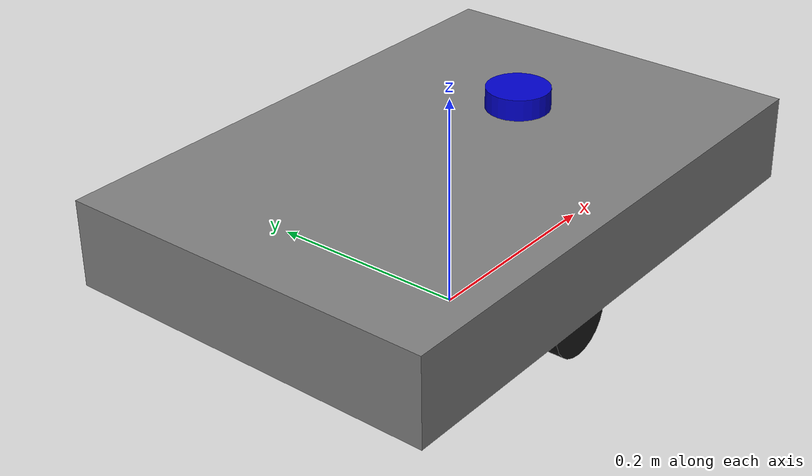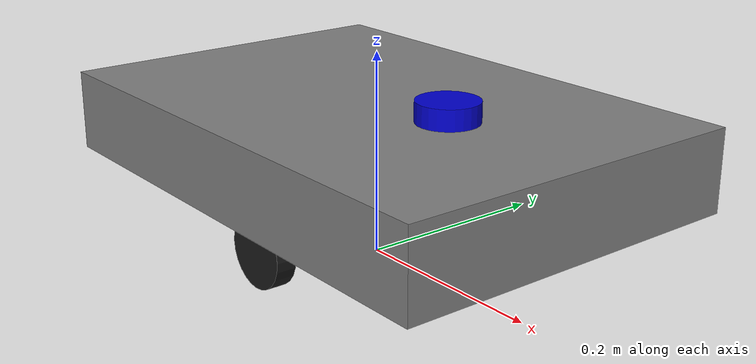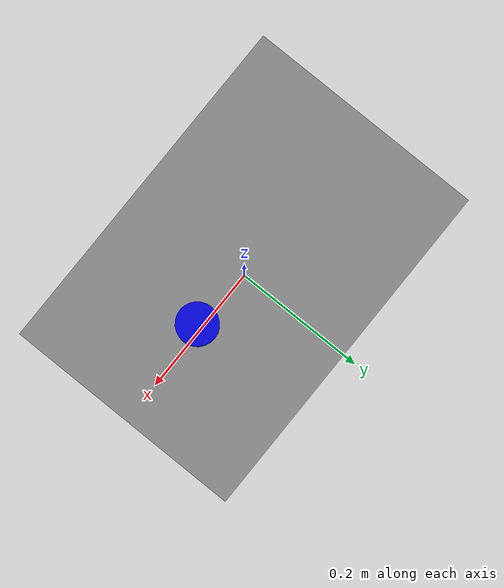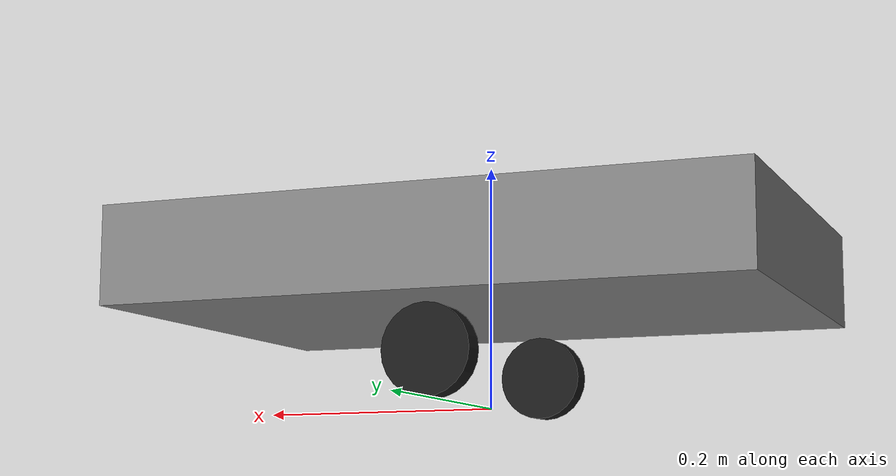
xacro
<?xml version="1.0"?>
<robot xmlns:xacro="http://www.ros.org/wiki/xacro" name="slamwalker">

  <!-- ============ Parameters ============ -->
  <xacro:arg name="wheel_base"    default="0.26"/>
  <xacro:arg name="wheel_radius"  default="0.03575"/>
  <xacro:arg name="body_length"   default="0.52"/>
  <xacro:arg name="body_width"    default="0.356"/>
  <xacro:arg name="body_height"   default="0.08"/>
  <!-- Lidar mount: XYZ offset from base_link center -->
  <xacro:arg name="lidar_x"       default="0.1"/>
  <xacro:arg name="lidar_y"       default="0.0"/>
  <xacro:arg name="lidar_z"       default="0.12"/>

  <!-- ============ base_footprint (ground projection) ============ -->
  <link name="base_footprint"/>

  <joint name="base_footprint_joint" type="fixed">
    <parent link="base_footprint"/>
    <child link="base_link"/>
    <origin xyz="0 0 $(arg wheel_radius)" rpy="0 0 0"/>
  </joint>

  <!-- ============ base_link (chassis center) ============ -->
  <link name="base_link">
    <visual>
      <geometry>
        <box size="$(arg body_length) $(arg body_width) $(arg body_height)"/>
      </geometry>
      <origin xyz="0 0 $(arg body_height)" rpy="0 0 0"/>
      <material name="grey">
        <color rgba="0.5 0.5 0.5 1.0"/>
      </material>
    </visual>
    <collision>
      <geometry>
        <box size="$(arg body_length) $(arg body_width) $(arg body_height)"/>
      </geometry>
      <origin xyz="0 0 $(arg body_height)" rpy="0 0 0"/>
    </collision>
    <inertial>
      <mass value="1.5"/>
      <inertia ixx="0.005" ixy="0" ixz="0" iyy="0.005" iyz="0" izz="0.008"/>
    </inertial>
  </link>

  <!-- ============ Left Wheel ============ -->
  <link name="left_wheel">
    <visual>
      <geometry>
        <cylinder radius="$(arg wheel_radius)" length="0.02"/>
      </geometry>
      <material name="black">
        <color rgba="0.1 0.1 0.1 1.0"/>
      </material>
    </visual>
  </link>

  <joint name="left_wheel_joint" type="continuous">
    <parent link="base_link"/>
    <child link="left_wheel"/>
    <origin xyz="0 ${$(arg wheel_base)/2.0} 0" rpy="${-pi/2.0} 0 0"/>
    <axis xyz="0 0 1"/>
  </joint>

  <!-- ============ Right Wheel ============ -->
  <link name="right_wheel">
    <visual>
      <geometry>
        <cylinder radius="$(arg wheel_radius)" length="0.02"/>
      </geometry>
      <material name="black">
        <color rgba="0.1 0.1 0.1 1.0"/>
      </material>
    </visual>
  </link>

  <joint name="right_wheel_joint" type="continuous">
    <parent link="base_link"/>
    <child link="right_wheel"/>
    <origin xyz="0 ${-$(arg wheel_base)/2.0} 0" rpy="${-pi/2.0} 0 0"/>
    <axis xyz="0 0 1"/>
  </joint>

  <!-- ============ Laser (LDLiDAR) ============ -->
  <link name="base_laser">
    <visual>
      <geometry>
        <cylinder radius="0.03" length="0.04"/>
      </geometry>
      <material name="blue">
        <color rgba="0.0 0.0 0.8 1.0"/>
      </material>
    </visual>
  </link>

  <joint name="laser_joint" type="fixed">
    <parent link="base_link"/>
    <child link="base_laser"/>
    <origin xyz="$(arg lidar_x) $(arg lidar_y) $(arg lidar_z)" rpy="0 0 0"/>
  </joint>

</robot>
